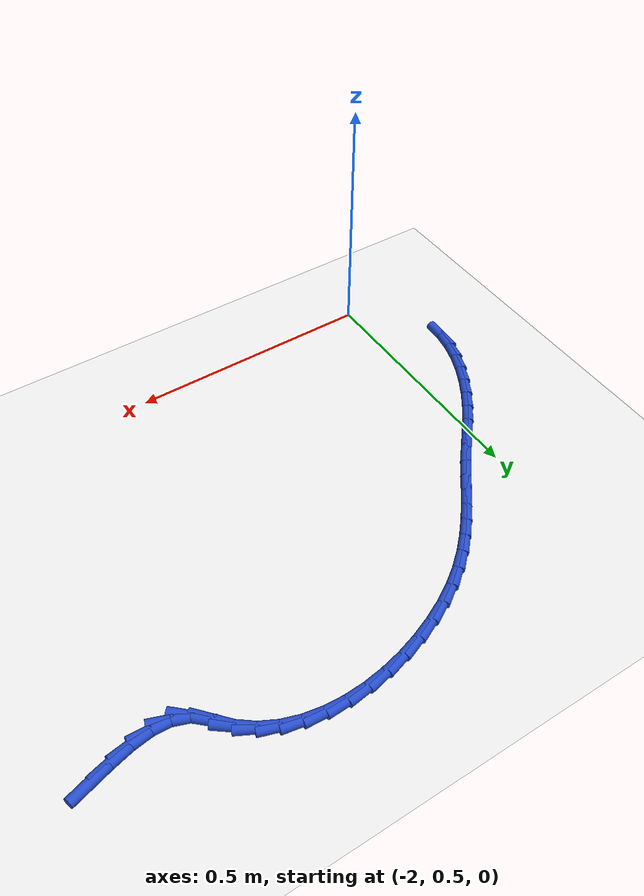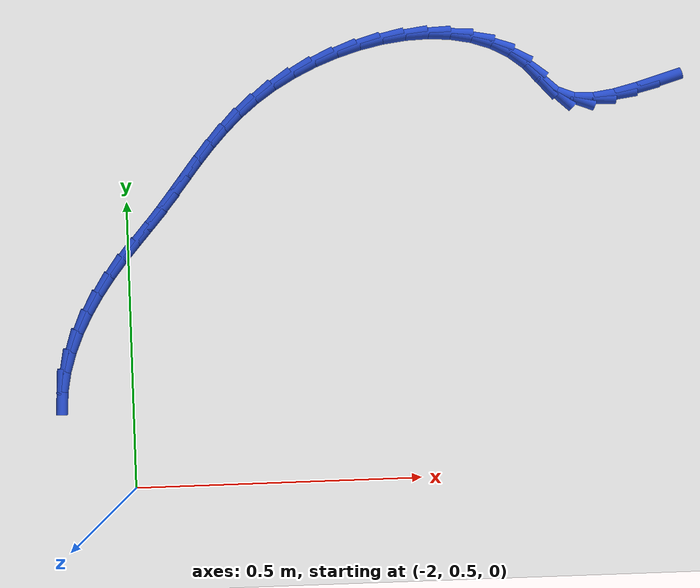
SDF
<sdf version="1.6">
 <world name="default">
  <model name="ground_plane">
   <static>1</static>
   <link name="link">
    <collision name="collision">
     <geometry><plane><normal>0 0 1</normal><size>100 100</size></plane></geometry>
     <surface><friction><ode><mu>100</mu><mu2>50</mu2></ode></friction></surface>
    </collision>
    <visual name="visual">
     <cast_shadows>0</cast_shadows>
     <geometry><plane><normal>0 0 1</normal><size>100 100</size></plane></geometry>
     <material>
      <script><uri>file://media/materials/scripts/gazebo.material</uri><name>Gazebo/WhiteGlow</name></script>
     </material>
    </visual>
   </link>
  </model>
  <model name="line">
   <link name="link_51">
    <pose>-1.0624269587137192 1.1790838510085022 0.01 0 1.57 0.2841199624350879</pose>
    <collision name="collision">
     <geometry><cylinder><radius>0.01</radius><length>0.08</length></cylinder></geometry>
    </collision>
    <visual name="visual">
     <material>
      <script><name>Gazebo/Blue</name><uri>file://media/materials/scripts/gazebo.material</uri></script>
     </material>
     <geometry><cylinder><radius>0.01</radius><length>0.08</length></cylinder></geometry>
    </visual>
   </link>
   <link name="link_52">
    <pose>-1.102815168157126 1.1672896750339625 0.01 0 1.57 0.24301280588141128</pose>
    <collision name="collision">
     <geometry><cylinder><radius>0.01</radius><length>0.08</length></cylinder></geometry>
    </collision>
    <visual name="visual">
     <material>
      <script><name>Gazebo/Blue</name><uri>file://media/materials/scripts/gazebo.material</uri></script>
     </material>
     <geometry><cylinder><radius>0.01</radius><length>0.08</length></cylinder></geometry>
    </visual>
   </link>
   <link name="link_53">
    <pose>-1.1420652113606875 1.1575591065475865 0.01 0 1.57 0.13902302836025154</pose>
    <collision name="collision">
     <geometry><cylinder><radius>0.01</radius><length>0.08</length></cylinder></geometry>
    </collision>
    <visual name="visual">
     <material>
      <script><name>Gazebo/Blue</name><uri>file://media/materials/scripts/gazebo.material</uri></script>
     </material>
     <geometry><cylinder><radius>0.01</radius><length>0.08</length></cylinder></geometry>
    </visual>
   </link>
   <link name="link_54">
    <pose>-1.1791868660143092 1.1523648345740942 0.01 0 1.57 -0.0533185671387295</pose>
    <collision name="collision">
     <geometry><cylinder><radius>0.01</radius><length>0.08</length></cylinder></geometry>
    </collision>
    <visual name="visual">
     <material>
      <script><name>Gazebo/Blue</name><uri>file://media/materials/scripts/gazebo.material</uri></script>
     </material>
     <geometry><cylinder><radius>0.01</radius><length>0.08</length></cylinder></geometry>
    </visual>
   </link>
   <link name="link_55">
    <pose>-1.2131899098078975 1.1541795481382067 0.01 0 1.57 -0.36129214879909916</pose>
    <collision name="collision">
     <geometry><cylinder><radius>0.01</radius><length>0.08</length></cylinder></geometry>
    </collision>
    <visual name="visual">
     <material>
      <script><name>Gazebo/Blue</name><uri>file://media/materials/scripts/gazebo.material</uri></script>
     </material>
     <geometry><cylinder><radius>0.01</radius><length>0.08</length></cylinder></geometry>
    </visual>
   </link>
   <link name="link_56">
    <pose>-1.2430841204313574 1.1654759362646439 0.01 0 1.57 -0.7477746549677848</pose>
    <collision name="collision">
     <geometry><cylinder><radius>0.01</radius><length>0.08</length></cylinder></geometry>
    </collision>
    <visual name="visual">
     <material>
      <script><name>Gazebo/Blue</name><uri>file://media/materials/scripts/gazebo.material</uri></script>
     </material>
     <geometry><cylinder><radius>0.01</radius><length>0.08</length></cylinder></geometry>
    </visual>
   </link>
   <link name="link_57">
    <pose>-1.2679685971139445 1.1885550041734565 0.01 0 1.57 -0.8473288829064564</pose>
    <collision name="collision">
     <geometry><cylinder><radius>0.01</radius><length>0.08</length></cylinder></geometry>
    </collision>
    <visual name="visual">
     <material>
      <script><name>Gazebo/Blue</name><uri>file://media/materials/scripts/gazebo.material</uri></script>
     </material>
     <geometry><cylinder><radius>0.01</radius><length>0.08</length></cylinder></geometry>
    </visual>
   </link>
   <link name="link_58">
    <pose>-1.2920571512433392 1.215828521253727 0.01 0 1.57 -0.6626221886639944</pose>
    <collision name="collision">
     <geometry><cylinder><radius>0.01</radius><length>0.08</length></cylinder></geometry>
    </collision>
    <visual name="visual">
     <material>
      <script><name>Gazebo/Blue</name><uri>file://media/materials/scripts/gazebo.material</uri></script>
     </material>
     <geometry><cylinder><radius>0.01</radius><length>0.08</length></cylinder></geometry>
    </visual>
   </link>
   <link name="link_59">
    <pose>-1.320169652873955 1.2377651314889422 0.01 0 1.57 -0.48386697379064536</pose>
    <collision name="collision">
     <geometry><cylinder><radius>0.01</radius><length>0.08</length></cylinder></geometry>
    </collision>
    <visual name="visual">
     <material>
      <script><name>Gazebo/Blue</name><uri>file://media/materials/scripts/gazebo.material</uri></script>
     </material>
     <geometry><cylinder><radius>0.01</radius><length>0.08</length></cylinder></geometry>
    </visual>
   </link>
   <link name="link_60">
    <pose>-1.3518523797611735 1.2544155401432862 0.01 0 1.57 -0.32429105688157894</pose>
    <collision name="collision">
     <geometry><cylinder><radius>0.01</radius><length>0.08</length></cylinder></geometry>
    </collision>
    <visual name="visual">
     <material>
      <script><name>Gazebo/Blue</name><uri>file://media/materials/scripts/gazebo.material</uri></script>
     </material>
     <geometry><cylinder><radius>0.01</radius><length>0.08</length></cylinder></geometry>
    </visual>
   </link>
   <link name="link_61">
    <pose>-1.386520961216939 1.2660696789127641 0.01 0 1.57 -0.18527402597767326</pose>
    <collision name="collision">
     <geometry><cylinder><radius>0.01</radius><length>0.08</length></cylinder></geometry>
    </collision>
    <visual name="visual">
     <material>
      <script><name>Gazebo/Blue</name><uri>file://media/materials/scripts/gazebo.material</uri></script>
     </material>
     <geometry><cylinder><radius>0.01</radius><length>0.08</length></cylinder></geometry>
    </visual>
   </link>
   <link name="link_62">
    <pose>-1.423591026553195 1.2730174794933786 0.01 0 1.57 -0.0650041396111466</pose>
    <collision name="collision">
     <geometry><cylinder><radius>0.01</radius><length>0.08</length></cylinder></geometry>
    </collision>
    <visual name="visual">
     <material>
      <script><name>Gazebo/Blue</name><uri>file://media/materials/scripts/gazebo.material</uri></script>
     </material>
     <geometry><cylinder><radius>0.01</radius><length>0.08</length></cylinder></geometry>
    </visual>
   </link>
   <link name="link_63">
    <pose>-1.4624782050818865 1.2755488735811338 0.01 0 1.57 0.039736894402182935</pose>
    <collision name="collision">
     <geometry><cylinder><radius>0.01</radius><length>0.08</length></cylinder></geometry>
    </collision>
    <visual name="visual">
     <material>
      <script><name>Gazebo/Blue</name><uri>file://media/materials/scripts/gazebo.material</uri></script>
     </material>
     <geometry><cylinder><radius>0.01</radius><length>0.08</length></cylinder></geometry>
    </visual>
   </link>
   <link name="link_64">
    <pose>-1.502598126114957 1.2739537928720337 0.01 0 1.57 0.13245154870885104</pose>
    <collision name="collision">
     <geometry><cylinder><radius>0.01</radius><length>0.08</length></cylinder></geometry>
    </collision>
    <visual name="visual">
     <material>
      <script><name>Gazebo/Blue</name><uri>file://media/materials/scripts/gazebo.material</uri></script>
     </material>
     <geometry><cylinder><radius>0.01</radius><length>0.08</length></cylinder></geometry>
    </visual>
   </link>
   <link name="link_65">
    <pose>-1.5433664189643514 1.2685221690620816 0.01 0 1.57 0.216436552488493</pose>
    <collision name="collision">
     <geometry><cylinder><radius>0.01</radius><length>0.08</length></cylinder></geometry>
    </collision>
    <visual name="visual">
     <material>
      <script><name>Gazebo/Blue</name><uri>file://media/materials/scripts/gazebo.material</uri></script>
     </material>
     <geometry><cylinder><radius>0.01</radius><length>0.08</length></cylinder></geometry>
    </visual>
   </link>
   <link name="link_66">
    <pose>-1.5841987129420136 1.259543933847281 0.01 0 1.57 0.2946702870413316</pose>
    <collision name="collision">
     <geometry><cylinder><radius>0.01</radius><length>0.08</length></cylinder></geometry>
    </collision>
    <visual name="visual">
     <material>
      <script><name>Gazebo/Blue</name><uri>file://media/materials/scripts/gazebo.material</uri></script>
     </material>
     <geometry><cylinder><radius>0.01</radius><length>0.08</length></cylinder></geometry>
    </visual>
   </link>
   <link name="link_67">
    <pose>-1.6245106373598877 1.2473090189236369 0.01 0 1.57 0.3698811734518021</pose>
    <collision name="collision">
     <geometry><cylinder><radius>0.01</radius><length>0.08</length></cylinder></geometry>
    </collision>
    <visual name="visual">
     <material>
      <script><name>Gazebo/Blue</name><uri>file://media/materials/scripts/gazebo.material</uri></script>
     </material>
     <geometry><cylinder><radius>0.01</radius><length>0.08</length></cylinder></geometry>
    </visual>
   </link>
   <link name="link_68">
    <pose>-1.6637178215299178 1.232107355987151 0.01 0 1.57 0.4446957608849422</pose>
    <collision name="collision">
     <geometry><cylinder><radius>0.01</radius><length>0.08</length></cylinder></geometry>
    </collision>
    <visual name="visual">
     <material>
      <script><name>Gazebo/Blue</name><uri>file://media/materials/scripts/gazebo.material</uri></script>
     </material>
     <geometry><cylinder><radius>0.01</radius><length>0.08</length></cylinder></geometry>
    </visual>
   </link>
   <link name="link_69">
    <pose>-1.7012358947640482 1.2142288767338294 0.01 0 1.57 0.5218283881655081</pose>
    <collision name="collision">
     <geometry><cylinder><radius>0.01</radius><length>0.08</length></cylinder></geometry>
    </collision>
    <visual name="visual">
     <material>
      <script><name>Gazebo/Blue</name><uri>file://media/materials/scripts/gazebo.material</uri></script>
     </material>
     <geometry><cylinder><radius>0.01</radius><length>0.08</length></cylinder></geometry>
    </visual>
   </link>
   <link name="link_70">
    <pose>-1.736480486374223 1.1939635128596735 0.01 0 1.57 0.6042747989689048</pose>
    <collision name="collision">
     <geometry><cylinder><radius>0.01</radius><length>0.08</length></cylinder></geometry>
    </collision>
    <visual name="visual">
     <material>
      <script><name>Gazebo/Blue</name><uri>file://media/materials/scripts/gazebo.material</uri></script>
     </material>
     <geometry><cylinder><radius>0.01</radius><length>0.08</length></cylinder></geometry>
    </visual>
   </link>
   <link name="link_71">
    <pose>-1.768869307492859 1.1716012717804636 0.01 0 1.57 0.689600823613114</pose>
    <collision name="collision">
     <geometry><cylinder><radius>0.01</radius><length>0.08</length></cylinder></geometry>
    </collision>
    <visual name="visual">
     <material>
      <script><name>Gazebo/Blue</name><uri>file://media/materials/scripts/gazebo.material</uri></script>
     </material>
     <geometry><cylinder><radius>0.01</radius><length>0.08</length></cylinder></geometry>
    </visual>
   </link>
   <link name="link_72">
    <pose>-1.798162010369089 1.147444597961484 0.01 0 1.57 0.7652700643637813</pose>
    <collision name="collision">
     <geometry><cylinder><radius>0.01</radius><length>0.08</length></cylinder></geometry>
    </collision>
    <visual name="visual">
     <material>
      <script><name>Gazebo/Blue</name><uri>file://media/materials/scripts/gazebo.material</uri></script>
     </material>
     <geometry><cylinder><radius>0.01</radius><length>0.08</length></cylinder></geometry>
    </visual>
   </link>
   <link name="link_73">
    <pose>-1.824837316314378 1.1218220897790019 0.01 0 1.57 0.8268070320742029</pose>
    <collision name="collision">
     <geometry><cylinder><radius>0.01</radius><length>0.08</length></cylinder></geometry>
    </collision>
    <visual name="visual">
     <material>
      <script><name>Gazebo/Blue</name><uri>file://media/materials/scripts/gazebo.material</uri></script>
     </material>
     <geometry><cylinder><radius>0.01</radius><length>0.08</length></cylinder></geometry>
    </visual>
   </link>
   <link name="link_74">
    <pose>-1.8494647896484935 1.095065649742469 0.01 0 1.57 0.8721345711113417</pose>
    <collision name="collision">
     <geometry><cylinder><radius>0.01</radius><length>0.08</length></cylinder></geometry>
    </collision>
    <visual name="visual">
     <material>
      <script><name>Gazebo/Blue</name><uri>file://media/materials/scripts/gazebo.material</uri></script>
     </material>
     <geometry><cylinder><radius>0.01</radius><length>0.08</length></cylinder></geometry>
    </visual>
   </link>
   <link name="link_75">
    <pose>-1.8726139946912017 1.067507180361339 0.01 0 1.57 0.9000355454267183</pose>
    <collision name="collision">
     <geometry><cylinder><radius>0.01</radius><length>0.08</length></cylinder></geometry>
    </collision>
    <visual name="visual">
     <material>
      <script><name>Gazebo/Blue</name><uri>file://media/materials/scripts/gazebo.material</uri></script>
     </material>
     <geometry><cylinder><radius>0.01</radius><length>0.08</length></cylinder></geometry>
    </visual>
   </link>
   <link name="link_76">
    <pose>-1.894854495762269 1.039478584145064 0.01 0 1.57 0.9098895628897574</pose>
    <collision name="collision">
     <geometry><cylinder><radius>0.01</radius><length>0.08</length></cylinder></geometry>
    </collision>
    <visual name="visual">
     <material>
      <script><name>Gazebo/Blue</name><uri>file://media/materials/scripts/gazebo.material</uri></script>
     </material>
     <geometry><cylinder><radius>0.01</radius><length>0.08</length></cylinder></geometry>
    </visual>
   </link>
   <link name="link_77">
    <pose>-1.916755857181462 1.0113117636030977 0.01 0 1.57 0.9014567225173544</pose>
    <collision name="collision">
     <geometry><cylinder><radius>0.01</radius><length>0.08</length></cylinder></geometry>
    </collision>
    <visual name="visual">
     <material>
      <script><name>Gazebo/Blue</name><uri>file://media/materials/scripts/gazebo.material</uri></script>
     </material>
     <geometry><cylinder><radius>0.01</radius><length>0.08</length></cylinder></geometry>
    </visual>
   </link>
   <link name="link_78">
    <pose>-1.9388876432685467 0.9833386212448918 0.01 0 1.57 0.8754460328419026</pose>
    <collision name="collision">
     <geometry><cylinder><radius>0.01</radius><length>0.08</length></cylinder></geometry>
    </collision>
    <visual name="visual">
     <material>
      <script><name>Gazebo/Blue</name><uri>file://media/materials/scripts/gazebo.material</uri></script>
     </material>
     <geometry><cylinder><radius>0.01</radius><length>0.08</length></cylinder></geometry>
    </visual>
   </link>
   <link name="link_79">
    <pose>-1.961802112907573 0.9558754512818184 0.01 0 1.57 0.8539113630981349</pose>
    <collision name="collision">
     <geometry><cylinder><radius>0.01</radius><length>0.08</length></cylinder></geometry>
    </collision>
    <visual name="visual">
     <material>
      <script><name>Gazebo/Blue</name><uri>file://media/materials/scripts/gazebo.material</uri></script>
     </material>
     <geometry><cylinder><radius>0.01</radius><length>0.08</length></cylinder></geometry>
    </visual>
   </link>
   <link name="link_80">
    <pose>-1.9854729209427042 0.9287166873680643 0.01 0 1.57 0.862938002096297</pose>
    <collision name="collision">
     <geometry><cylinder><radius>0.01</radius><length>0.08</length></cylinder></geometry>
    </collision>
    <visual name="visual">
     <material>
      <script><name>Gazebo/Blue</name><uri>file://media/materials/scripts/gazebo.material</uri></script>
     </material>
     <geometry><cylinder><radius>0.01</radius><length>0.08</length></cylinder></geometry>
    </visual>
   </link>
   <link name="link_81">
    <pose>-2.0091724314570736 0.9010242477205379 0.01 0 1.57 0.9018559592327918</pose>
    <collision name="collision">
     <geometry><cylinder><radius>0.01</radius><length>0.08</length></cylinder></geometry>
    </collision>
    <visual name="visual">
     <material>
      <script><name>Gazebo/Blue</name><uri>file://media/materials/scripts/gazebo.material</uri></script>
     </material>
     <geometry><cylinder><radius>0.01</radius><length>0.08</length></cylinder></geometry>
    </visual>
   </link>
   <link name="link_82">
    <pose>-2.032140442566397 0.8719703406169557 0.01 0 1.57 0.9564129762920881</pose>
    <collision name="collision">
     <geometry><cylinder><radius>0.01</radius><length>0.08</length></cylinder></geometry>
    </collision>
    <visual name="visual">
     <material>
      <script><name>Gazebo/Blue</name><uri>file://media/materials/scripts/gazebo.material</uri></script>
     </material>
     <geometry><cylinder><radius>0.01</radius><length>0.08</length></cylinder></geometry>
    </visual>
   </link>
   <link name="link_83">
    <pose>-2.053740498691467 0.8413520937504657 0.01 0 1.57 1.0186775631879026</pose>
    <collision name="collision">
     <geometry><cylinder><radius>0.01</radius><length>0.08</length></cylinder></geometry>
    </collision>
    <visual name="visual">
     <material>
      <script><name>Gazebo/Blue</name><uri>file://media/materials/scripts/gazebo.material</uri></script>
     </material>
     <geometry><cylinder><radius>0.01</radius><length>0.08</length></cylinder></geometry>
    </visual>
   </link>
   <link name="link_84">
    <pose>-2.073422397651623 0.8094022148774987 0.01 0 1.57 1.0904547993777665</pose>
    <collision name="collision">
     <geometry><cylinder><radius>0.01</radius><length>0.08</length></cylinder></geometry>
    </collision>
    <visual name="visual">
     <material>
      <script><name>Gazebo/Blue</name><uri>file://media/materials/scripts/gazebo.material</uri></script>
     </material>
     <geometry><cylinder><radius>0.01</radius><length>0.08</length></cylinder></geometry>
    </visual>
   </link>
   <link name="link_85">
    <pose>-2.090637692708484 0.7763622767461614 0.01 0 1.57 1.173993726510144</pose>
    <collision name="collision">
     <geometry><cylinder><radius>0.01</radius><length>0.08</length></cylinder></geometry>
    </collision>
    <visual name="visual">
     <material>
      <script><name>Gazebo/Blue</name><uri>file://media/materials/scripts/gazebo.material</uri></script>
     </material>
     <geometry><cylinder><radius>0.01</radius><length>0.08</length></cylinder></geometry>
    </visual>
   </link>
   <link name="link_86">
    <pose>-2.1048379371236687 0.7424738521045613 0.01 0 1.57 1.2716937984222043</pose>
    <collision name="collision">
     <geometry><cylinder><radius>0.01</radius><length>0.08</length></cylinder></geometry>
    </collision>
    <visual name="visual">
     <material>
      <script><name>Gazebo/Blue</name><uri>file://media/materials/scripts/gazebo.material</uri></script>
     </material>
     <geometry><cylinder><radius>0.01</radius><length>0.08</length></cylinder></geometry>
    </visual>
   </link>
   <link name="link_87">
    <pose>-2.115474684158797 0.7079785137008044 0.01 0 1.57 1.3857691407970882</pose>
    <collision name="collision">
     <geometry><cylinder><radius>0.01</radius><length>0.08</length></cylinder></geometry>
    </collision>
    <visual name="visual">
     <material>
      <script><name>Gazebo/Blue</name><uri>file://media/materials/scripts/gazebo.material</uri></script>
     </material>
     <geometry><cylinder><radius>0.01</radius><length>0.08</length></cylinder></geometry>
    </visual>
   </link>
   <link name="link_88">
    <pose>-2.121999487075489 0.6731178342829992 0.01 0 1.57 1.5150791457964676</pose>
    <collision name="collision">
     <geometry><cylinder><radius>0.01</radius><length>0.08</length></cylinder></geometry>
    </collision>
    <visual name="visual">
     <material>
      <script><name>Gazebo/Blue</name><uri>file://media/materials/scripts/gazebo.material</uri></script>
     </material>
     <geometry><cylinder><radius>0.01</radius><length>0.08</length></cylinder></geometry>
    </visual>
   </link>
  </model>
 </world>
</sdf>
